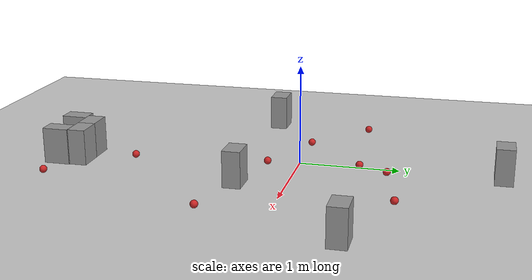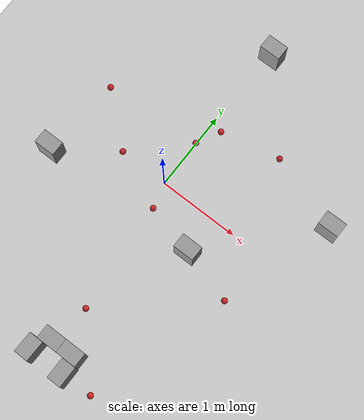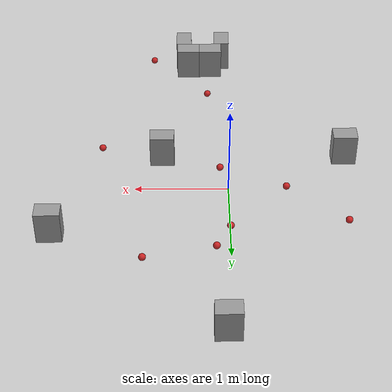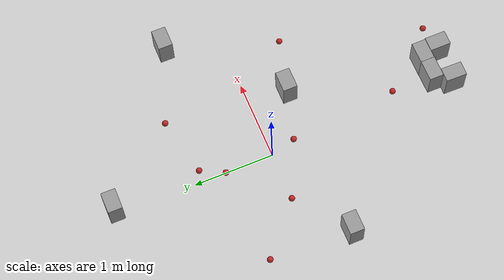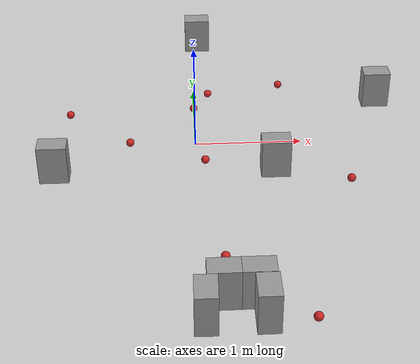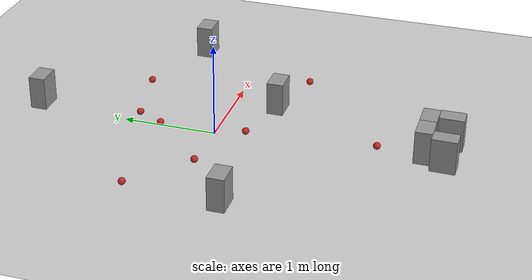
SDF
<sdf version="1.6">
 <world name="default">
  <light name="sun" type="directional">
   <pose>0 0 10 0 -0 0</pose>
   <diffuse>0.8 0.8 0.8 1</diffuse>
   <specular>0.2 0.2 0.2 1</specular>
   <attenuation>
    <range>1000</range>
    <constant>0.9</constant>
    <linear>0.01</linear>
    <quadratic>0.001</quadratic>
   </attenuation>
   <direction>-0.5 0.1 -0.9</direction>
  </light>
  <model name="ground_plane">
   <static>1</static>
   <link name="link">
    <collision name="collision">
     <geometry><plane><normal>0 0 1</normal><size>100 100</size></plane></geometry>
     <surface><friction><ode><mu>100</mu><mu2>50</mu2></ode></friction></surface>
    </collision>
    <visual name="visual">
     <cast_shadows>0</cast_shadows>
     <geometry><plane><normal>0 0 1</normal><size>100 100</size></plane></geometry>
     <material>
      <script><uri>file://media/materials/scripts/gazebo.material</uri><name>Gazebo/Grey</name></script>
     </material>
    </visual>
   </link>
  </model>
  <physics name="default_physics" default="0" type="ode">
   <real_time_update_rate>1000</real_time_update_rate>
   <max_step_size>0.001</max_step_size>
   <real_time_factor>1</real_time_factor>
   <ode>
    <solver>
     <type>quick</type>
     <iters>150</iters>
     <precon_iters>0</precon_iters>
     <sor>1.4</sor>
     <use_dynamic_moi_rescaling>1</use_dynamic_moi_rescaling>
    </solver>
    <constraints>
     <cfm>1e-05</cfm>
     <erp>0.2</erp>
     <contact_max_correcting_vel>2000</contact_max_correcting_vel>
     <contact_surface_layer>0.01</contact_surface_layer>
    </constraints>
   </ode>
  </physics>
  <scene><ambient>0.4 0.4 0.4 1</ambient><background>0.7 0.7 0.7 1</background><shadows>1</shadows></scene>
  <gravity>0 0 -9.8</gravity>
  <magnetic_field>6e-06 2.3e-05 -4.2e-05</magnetic_field>
  <atmosphere type="adiabatic"/>
  <spherical_coordinates>
   <surface_model>EARTH_WGS84</surface_model>
   <latitude_deg>0</latitude_deg>
   <longitude_deg>0</longitude_deg>
   <elevation>0</elevation>
   <heading_deg>0</heading_deg>
  </spherical_coordinates>
  <model name="cricket_ball_0">
   <link name="link">
    <pose>0 0 0.0375 0 -0 0</pose>
    <inertial>
     <mass>0.1467</mass>
     <inertia>
      <ixx>8.25187e-05</ixx>
      <ixy>0</ixy>
      <ixz>0</ixz>
      <iyy>8.25187e-05</iyy>
      <iyz>0</iyz>
      <izz>8.25187e-05</izz>
     </inertia>
    </inertial>
    <collision name="collision">
     <geometry><sphere><radius>0.0375</radius></sphere></geometry>
     <surface>
      <contact>
       <poissons_ratio>0.347</poissons_ratio>
       <elastic_modulus>8.8e+09</elastic_modulus>
       <ode><kp>100000</kp><kd>100</kd><max_vel>100</max_vel><min_depth>0.001</min_depth></ode>
      </contact>
      <friction>
       <torsional>
        <coefficient>1</coefficient>
        <use_patch_radius>0</use_patch_radius>
        <surface_radius>0.01</surface_radius>
       </torsional>
      </friction>
     </surface>
    </collision>
    <visual name="visual">
     <geometry><sphere><radius>0.0375</radius></sphere></geometry>
     <material>
      <script><uri>file://media/materials/scripts/gazebo.material</uri><name>Gazebo/Red</name></script>
     </material>
    </visual>
    <velocity_decay><linear>0</linear><angular>0.005</angular></velocity_decay>
   </link>
   <pose>0.146464 0.890799 -0.001014 0 -0 0</pose>
  </model>
  <model name="cricket_ball_1">
   <link name="link">
    <pose>0 0 0.0375 0 -0 0</pose>
    <inertial>
     <mass>0.1467</mass>
     <inertia>
      <ixx>8.25187e-05</ixx>
      <ixy>0</ixy>
      <ixz>0</ixz>
      <iyy>8.25187e-05</iyy>
      <iyz>0</iyz>
      <izz>8.25187e-05</izz>
     </inertia>
    </inertial>
    <collision name="collision">
     <geometry><sphere><radius>0.0375</radius></sphere></geometry>
     <surface>
      <contact>
       <poissons_ratio>0.347</poissons_ratio>
       <elastic_modulus>8.8e+09</elastic_modulus>
       <ode><kp>100000</kp><kd>100</kd><max_vel>100</max_vel><min_depth>0.001</min_depth></ode>
      </contact>
      <friction>
       <torsional>
        <coefficient>1</coefficient>
        <use_patch_radius>0</use_patch_radius>
        <surface_radius>0.01</surface_radius>
       </torsional>
      </friction>
     </surface>
    </collision>
    <visual name="visual">
     <geometry><sphere><radius>0.0375</radius></sphere></geometry>
     <material>
      <script><uri>file://media/materials/scripts/gazebo.material</uri><name>Gazebo/Red</name></script>
     </material>
    </visual>
    <velocity_decay><linear>0</linear><angular>0.005</angular></velocity_decay>
   </link>
   <pose>-1.21887 0.534263 -0.001014 0 -0 0</pose>
  </model>
  <model name="cricket_ball_2">
   <link name="link">
    <pose>0 0 0.0375 0 -0 0</pose>
    <inertial>
     <mass>0.1467</mass>
     <inertia>
      <ixx>8.25187e-05</ixx>
      <ixy>0</ixy>
      <ixz>0</ixz>
      <iyy>8.25187e-05</iyy>
      <iyz>0</iyz>
      <izz>8.25187e-05</izz>
     </inertia>
    </inertial>
    <collision name="collision">
     <geometry><sphere><radius>0.0375</radius></sphere></geometry>
     <surface>
      <contact>
       <poissons_ratio>0.347</poissons_ratio>
       <elastic_modulus>8.8e+09</elastic_modulus>
       <ode><kp>100000</kp><kd>100</kd><max_vel>100</max_vel><min_depth>0.001</min_depth></ode>
      </contact>
      <friction>
       <torsional>
        <coefficient>1</coefficient>
        <use_patch_radius>0</use_patch_radius>
        <surface_radius>0.01</surface_radius>
       </torsional>
      </friction>
     </surface>
    </collision>
    <visual name="visual">
     <geometry><sphere><radius>0.0375</radius></sphere></geometry>
     <material>
      <script><uri>file://media/materials/scripts/gazebo.material</uri><name>Gazebo/Red</name></script>
     </material>
    </visual>
    <velocity_decay><linear>0</linear><angular>0.005</angular></velocity_decay>
   </link>
   <pose>0.844096 -2.4 -0.001014 0 -0 0</pose>
  </model>
  <model name="cricket_ball_3">
   <link name="link">
    <pose>0 0 0.0375 0 -0 0</pose>
    <inertial>
     <mass>0.1467</mass>
     <inertia>
      <ixx>8.25187e-05</ixx>
      <ixy>0</ixy>
      <ixz>0</ixz>
      <iyy>8.25187e-05</iyy>
      <iyz>0</iyz>
      <izz>8.25187e-05</izz>
     </inertia>
    </inertial>
    <collision name="collision">
     <geometry><sphere><radius>0.0375</radius></sphere></geometry>
     <surface>
      <contact>
       <poissons_ratio>0.347</poissons_ratio>
       <elastic_modulus>8.8e+09</elastic_modulus>
       <ode><kp>100000</kp><kd>100</kd><max_vel>100</max_vel><min_depth>0.001</min_depth></ode>
      </contact>
      <friction>
       <torsional>
        <coefficient>1</coefficient>
        <use_patch_radius>0</use_patch_radius>
        <surface_radius>0.01</surface_radius>
       </torsional>
      </friction>
     </surface>
    </collision>
    <visual name="visual">
     <geometry><sphere><radius>0.0375</radius></sphere></geometry>
     <material>
      <script><uri>file://media/materials/scripts/gazebo.material</uri><name>Gazebo/Red</name></script>
     </material>
    </visual>
    <velocity_decay><linear>0</linear><angular>0.005</angular></velocity_decay>
   </link>
   <pose>1.37696 -0.668947 -0.001014 0 -0 0</pose>
  </model>
  <model name="cricket_ball_4">
   <link name="link">
    <pose>0 0 0.0375 0 -0 0</pose>
    <inertial>
     <mass>0.1467</mass>
     <inertia>
      <ixx>8.25187e-05</ixx>
      <ixy>0</ixy>
      <ixz>0</ixz>
      <iyy>8.25187e-05</iyy>
      <iyz>0</iyz>
      <izz>8.25187e-05</izz>
     </inertia>
    </inertial>
    <collision name="collision">
     <geometry><sphere><radius>0.0375</radius></sphere></geometry>
     <surface>
      <contact>
       <poissons_ratio>0.347</poissons_ratio>
       <elastic_modulus>8.8e+09</elastic_modulus>
       <ode><kp>100000</kp><kd>100</kd><max_vel>100</max_vel><min_depth>0.001</min_depth></ode>
      </contact>
      <friction>
       <torsional>
        <coefficient>1</coefficient>
        <use_patch_radius>0</use_patch_radius>
        <surface_radius>0.01</surface_radius>
       </torsional>
      </friction>
     </surface>
    </collision>
    <visual name="visual">
     <geometry><sphere><radius>0.0375</radius></sphere></geometry>
     <material>
      <script><uri>file://media/materials/scripts/gazebo.material</uri><name>Gazebo/Red</name></script>
     </material>
    </visual>
    <velocity_decay><linear>0</linear><angular>0.005</angular></velocity_decay>
   </link>
   <pose>0.883892 1.0443 -0.001014 0 -0 0</pose>
  </model>
  <model name="cricket_ball_5">
   <link name="link">
    <pose>0 0 0.0375 0 -0 0</pose>
    <inertial>
     <mass>0.1467</mass>
     <inertia>
      <ixx>8.25187e-05</ixx>
      <ixy>0</ixy>
      <ixz>0</ixz>
      <iyy>8.25187e-05</iyy>
      <iyz>0</iyz>
      <izz>8.25187e-05</izz>
     </inertia>
    </inertial>
    <collision name="collision">
     <geometry><sphere><radius>0.0375</radius></sphere></geometry>
     <surface>
      <contact>
       <poissons_ratio>0.347</poissons_ratio>
       <elastic_modulus>8.8e+09</elastic_modulus>
       <ode><kp>100000</kp><kd>100</kd><max_vel>100</max_vel><min_depth>0.001</min_depth></ode>
      </contact>
      <friction>
       <torsional>
        <coefficient>1</coefficient>
        <use_patch_radius>0</use_patch_radius>
        <surface_radius>0.01</surface_radius>
       </torsional>
      </friction>
     </surface>
    </collision>
    <visual name="visual">
     <geometry><sphere><radius>0.0375</radius></sphere></geometry>
     <material>
      <script><uri>file://media/materials/scripts/gazebo.material</uri><name>Gazebo/Red</name></script>
     </material>
    </visual>
    <velocity_decay><linear>0</linear><angular>0.005</angular></velocity_decay>
   </link>
   <pose>0.2 -1.68635 -0.001014 0 -0 0</pose>
  </model>
  <model name="cricket_ball_6">
   <link name="link">
    <pose>0 0 0.0375 0 -0 0</pose>
    <inertial>
     <mass>0.1467</mass>
     <inertia>
      <ixx>8.25187e-05</ixx>
      <ixy>0</ixy>
      <ixz>0</ixz>
      <iyy>8.25187e-05</iyy>
      <iyz>0</iyz>
      <izz>8.25187e-05</izz>
     </inertia>
    </inertial>
    <collision name="collision">
     <geometry><sphere><radius>0.0375</radius></sphere></geometry>
     <surface>
      <contact>
       <poissons_ratio>0.347</poissons_ratio>
       <elastic_modulus>8.8e+09</elastic_modulus>
       <ode><kp>100000</kp><kd>100</kd><max_vel>100</max_vel><min_depth>0.001</min_depth></ode>
      </contact>
      <friction>
       <torsional>
        <coefficient>1</coefficient>
        <use_patch_radius>0</use_patch_radius>
        <surface_radius>0.01</surface_radius>
       </torsional>
      </friction>
     </surface>
    </collision>
    <visual name="visual">
     <geometry><sphere><radius>0.0375</radius></sphere></geometry>
     <material>
      <script><uri>file://media/materials/scripts/gazebo.material</uri><name>Gazebo/Red</name></script>
     </material>
    </visual>
    <velocity_decay><linear>0</linear><angular>0.005</angular></velocity_decay>
   </link>
   <pose>-0.613628 0.003157 -0.001014 0 -0 0</pose>
  </model>
  <model name="unit_box_clone">
   <pose>0.71151 -0.483741 0.181075 -2e-06 0 2e-06</pose>
   <link name="link">
    <inertial>
     <mass>1</mass>
     <inertia>
      <ixx>0.166667</ixx>
      <ixy>0</ixy>
      <ixz>0</ixz>
      <iyy>0.166667</iyy>
      <iyz>0</iyz>
      <izz>0.166667</izz>
     </inertia>
    </inertial>
    <collision name="collision">
     <geometry><box><size>0.261244 0.178052 0.362151</size></box></geometry>
    </collision>
    <visual name="visual">
     <geometry><box><size>0.261244 0.178052 0.362151</size></box></geometry>
     <material>
      <script><name>Gazebo/Grey</name><uri>file://media/materials/scripts/gazebo.material</uri></script>
     </material>
    </visual>
   </link>
  </model>
  <model name="unit_box_clone_0">
   <pose>-1.26905 -0.487112 0.181076 2e-06 -0 2e-06</pose>
   <link name="link">
    <inertial>
     <mass>1</mass>
     <inertia>
      <ixx>0.166667</ixx>
      <ixy>0</ixy>
      <ixz>0</ixz>
      <iyy>0.166667</iyy>
      <iyz>0</iyz>
      <izz>0.166667</izz>
     </inertia>
    </inertial>
    <collision name="collision">
     <geometry><box><size>0.261244 0.178052 0.362151</size></box></geometry>
    </collision>
    <visual name="visual">
     <geometry><box><size>0.261244 0.178052 0.362151</size></box></geometry>
     <material>
      <script><name>Gazebo/Grey</name><uri>file://media/materials/scripts/gazebo.material</uri></script>
     </material>
    </visual>
   </link>
  </model>
  <model name="unit_box_clone_1">
   <pose>1.8238 0.702489 0.181075 -2e-06 0 2e-06</pose>
   <link name="link">
    <inertial>
     <mass>1</mass>
     <inertia>
      <ixx>0.166667</ixx>
      <ixy>0</ixy>
      <ixz>0</ixz>
      <iyy>0.166667</iyy>
      <iyz>0</iyz>
      <izz>0.166667</izz>
     </inertia>
    </inertial>
    <collision name="collision">
     <geometry><box><size>0.261244 0.178052 0.362151</size></box></geometry>
    </collision>
    <visual name="visual">
     <geometry><box><size>0.261244 0.178052 0.362151</size></box></geometry>
     <material>
      <script><name>Gazebo/Grey</name><uri>file://media/materials/scripts/gazebo.material</uri></script>
     </material>
    </visual>
   </link>
  </model>
  <model name="unit_box_clone_2">
   <pose>0.064127 1.99772 0.181075 -2e-06 0 2e-06</pose>
   <link name="link">
    <inertial>
     <mass>1</mass>
     <inertia>
      <ixx>0.166667</ixx>
      <ixy>0</ixy>
      <ixz>0</ixz>
      <iyy>0.166667</iyy>
      <iyz>0</iyz>
      <izz>0.166667</izz>
     </inertia>
    </inertial>
    <collision name="collision">
     <geometry><box><size>0.261244 0.178052 0.362151</size></box></geometry>
    </collision>
    <visual name="visual">
     <geometry><box><size>0.261244 0.178052 0.362151</size></box></geometry>
     <material>
      <script><name>Gazebo/Grey</name><uri>file://media/materials/scripts/gazebo.material</uri></script>
     </material>
    </visual>
   </link>
  </model>
  <model name="cricket_ball_7">
   <link name="link">
    <pose>0 0 0.0375 0 -0 0</pose>
    <inertial>
     <mass>0.1467</mass>
     <inertia>
      <ixx>8.25187e-05</ixx>
      <ixy>0</ixy>
      <ixz>0</ixz>
      <iyy>8.25187e-05</iyy>
      <iyz>0</iyz>
      <izz>8.25187e-05</izz>
     </inertia>
    </inertial>
    <velocity_decay><linear>0</linear><angular>0.005</angular></velocity_decay>
    <visual name="visual">
     <geometry><sphere><radius>0.0375</radius></sphere></geometry>
     <material>
      <script><uri>file://media/materials/scripts/gazebo.material</uri><name>Gazebo/Red</name></script>
      <ambient>1 0 0 1</ambient>
      <diffuse>1 0 0 1</diffuse>
      <specular>0.1 0.1 0.1 1</specular>
      <emissive>0 0 0 1</emissive>
     </material>
    </visual>
    <collision name="collision">
     <geometry><sphere><radius>0.0375</radius></sphere></geometry>
     <surface>
      <friction>
       <ode><mu>1</mu><mu2>1</mu2><fdir1>0 0 0</fdir1><slip1>0</slip1><slip2>0</slip2></ode>
       <torsional>
        <coefficient>1</coefficient>
        <patch_radius>0</patch_radius>
        <surface_radius>0.01</surface_radius>
        <use_patch_radius>0</use_patch_radius>
        <ode><slip>0</slip></ode>
       </torsional>
      </friction>
      <bounce><restitution_coefficient>0</restitution_coefficient><threshold>1e+06</threshold></bounce>
      <contact>
       <collide_without_contact>0</collide_without_contact>
       <collide_without_contact_bitmask>1</collide_without_contact_bitmask>
       <collide_bitmask>1</collide_bitmask>
       <ode>
        <soft_cfm>0</soft_cfm>
        <soft_erp>0.2</soft_erp>
        <kp>100000</kp>
        <kd>100</kd>
        <max_vel>100</max_vel>
        <min_depth>0.001</min_depth>
       </ode>
       <bullet>
        <split_impulse>1</split_impulse>
        <split_impulse_penetration_threshold>-0.01</split_impulse_penetration_threshold>
        <soft_cfm>0</soft_cfm>
        <soft_erp>0.2</soft_erp>
        <kp>100000</kp>
        <kd>100</kd>
       </bullet>
      </contact>
     </surface>
    </collision>
   </link>
   <static>0</static>
   <pose>-0.003579 0.603027 -0.001014 0 -0 0</pose>
  </model>
  <model name="cricket_ball_8">
   <link name="link">
    <pose>0 0 0.0375 0 -0 0</pose>
    <inertial>
     <mass>0.1467</mass>
     <inertia>
      <ixx>8.25187e-05</ixx>
      <ixy>0</ixy>
      <ixz>0</ixz>
      <iyy>8.25187e-05</iyy>
      <iyz>0</iyz>
      <izz>8.25187e-05</izz>
     </inertia>
    </inertial>
    <velocity_decay><linear>0</linear><angular>0.005</angular></velocity_decay>
    <visual name="visual">
     <geometry><sphere><radius>0.0375</radius></sphere></geometry>
     <material>
      <script><uri>file://media/materials/scripts/gazebo.material</uri><name>Gazebo/Red</name></script>
      <ambient>1 0 0 1</ambient>
      <diffuse>1 0 0 1</diffuse>
      <specular>0.1 0.1 0.1 1</specular>
      <emissive>0 0 0 1</emissive>
     </material>
    </visual>
    <collision name="collision">
     <geometry><sphere><radius>0.0375</radius></sphere></geometry>
     <surface>
      <friction>
       <ode><mu>1</mu><mu2>1</mu2><fdir1>0 0 0</fdir1><slip1>0</slip1><slip2>0</slip2></ode>
       <torsional>
        <coefficient>1</coefficient>
        <patch_radius>0</patch_radius>
        <surface_radius>0.01</surface_radius>
        <use_patch_radius>0</use_patch_radius>
        <ode><slip>0</slip></ode>
       </torsional>
      </friction>
      <bounce><restitution_coefficient>0</restitution_coefficient><threshold>1e+06</threshold></bounce>
      <contact>
       <collide_without_contact>0</collide_without_contact>
       <collide_without_contact_bitmask>1</collide_without_contact_bitmask>
       <collide_bitmask>1</collide_bitmask>
       <ode>
        <soft_cfm>0</soft_cfm>
        <soft_erp>0.2</soft_erp>
        <kp>100000</kp>
        <kd>100</kd>
        <max_vel>100</max_vel>
        <min_depth>0.001</min_depth>
       </ode>
       <bullet>
        <split_impulse>1</split_impulse>
        <split_impulse_penetration_threshold>-0.01</split_impulse_penetration_threshold>
        <soft_cfm>0</soft_cfm>
        <soft_erp>0.2</soft_erp>
        <kp>100000</kp>
        <kd>100</kd>
       </bullet>
      </contact>
     </surface>
    </collision>
   </link>
   <static>0</static>
   <pose>0.08406 -0.316633 -0.001014 0 -0 0</pose>
  </model>
  <model name="unit_box_clone_clone">
   <pose>0.474857 -2.39555 0.181075 -2e-06 -0 1.57136</pose>
   <link name="link">
    <inertial>
     <mass>1</mass>
     <inertia>
      <ixx>0.166667</ixx>
      <ixy>0</ixy>
      <ixz>0</ixz>
      <iyy>0.166667</iyy>
      <iyz>0</iyz>
      <izz>0.166667</izz>
     </inertia>
    </inertial>
    <collision name="collision">
     <geometry><box><size>0.261244 0.178052 0.362151</size></box></geometry>
    </collision>
    <visual name="visual">
     <geometry><box><size>0.261244 0.178052 0.362151</size></box></geometry>
     <material>
      <script><name>Gazebo/Grey</name><uri>file://media/materials/scripts/gazebo.material</uri></script>
     </material>
    </visual>
   </link>
  </model>
  <model name="unit_box_clone_clone_clone">
   <pose>0.021984 -2.39642 0.181076 2e-06 -0 1.55101</pose>
   <link name="link">
    <inertial>
     <mass>1</mass>
     <inertia>
      <ixx>0.166667</ixx>
      <ixy>0</ixy>
      <ixz>0</ixz>
      <iyy>0.166667</iyy>
      <iyz>0</iyz>
      <izz>0.166667</izz>
     </inertia>
    </inertial>
    <collision name="collision">
     <geometry><box><size>0.261244 0.178052 0.362151</size></box></geometry>
    </collision>
    <visual name="visual">
     <geometry><box><size>0.261244 0.178052 0.362151</size></box></geometry>
     <material>
      <script><name>Gazebo/Grey</name><uri>file://media/materials/scripts/gazebo.material</uri></script>
     </material>
    </visual>
   </link>
  </model>
  <model name="unit_box_clone_clone_clone_0">
   <pose>0.423069 -2.17362 0.181076 2e-06 -0 0.001</pose>
   <link name="link">
    <inertial>
     <mass>1</mass>
     <inertia>
      <ixx>0.166667</ixx>
      <ixy>0</ixy>
      <ixz>0</ixz>
      <iyy>0.166667</iyy>
      <iyz>0</iyz>
      <izz>0.166667</izz>
     </inertia>
    </inertial>
    <collision name="collision">
     <geometry><box><size>0.261244 0.178052 0.362151</size></box></geometry>
    </collision>
    <visual name="visual">
     <geometry><box><size>0.261244 0.178052 0.362151</size></box></geometry>
     <material>
      <script><name>Gazebo/Grey</name><uri>file://media/materials/scripts/gazebo.material</uri></script>
     </material>
    </visual>
   </link>
  </model>
  <model name="unit_box_clone_clone_clone_0_clone">
   <pose>0.161664 -2.17526 0.181076 -2e-06 0 -3.13889</pose>
   <link name="link">
    <inertial>
     <mass>1</mass>
     <inertia>
      <ixx>0.166667</ixx>
      <ixy>0</ixy>
      <ixz>0</ixz>
      <iyy>0.166667</iyy>
      <iyz>0</iyz>
      <izz>0.166667</izz>
     </inertia>
    </inertial>
    <collision name="collision">
     <geometry><box><size>0.261244 0.178052 0.362151</size></box></geometry>
    </collision>
    <visual name="visual">
     <geometry><box><size>0.261244 0.178052 0.362151</size></box></geometry>
     <material>
      <script><name>Gazebo/Grey</name><uri>file://media/materials/scripts/gazebo.material</uri></script>
     </material>
    </visual>
   </link>
  </model>
 </world>
</sdf>
